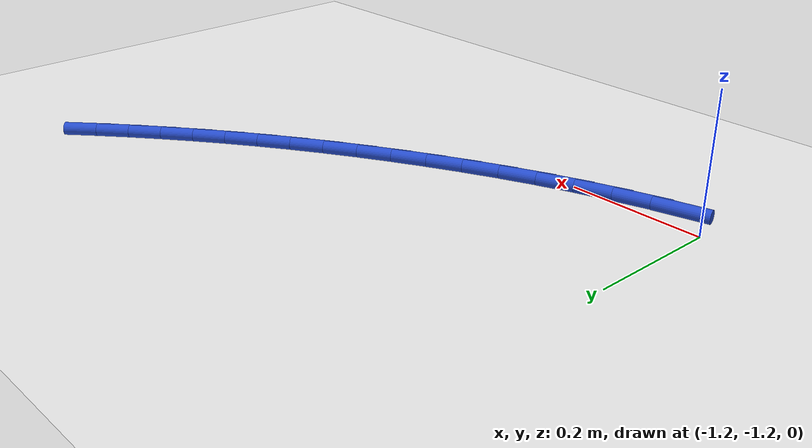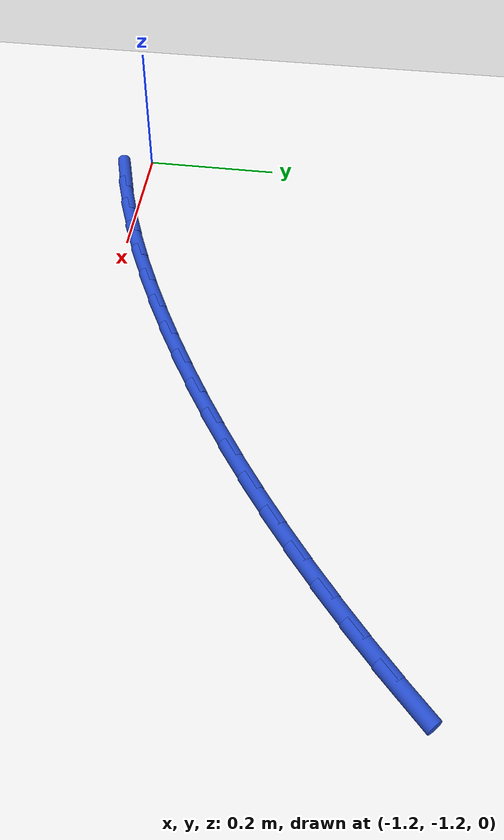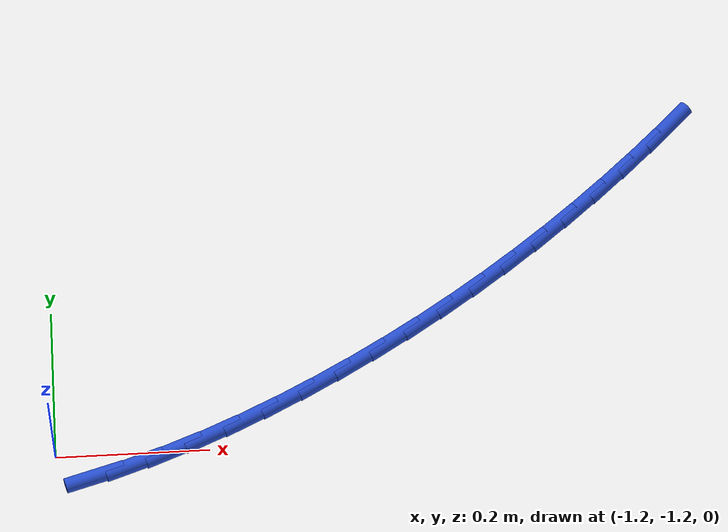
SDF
<sdf version="1.6">
 <world name="default">
  <model name="ground_plane">
   <static>1</static>
   <link name="link">
    <collision name="collision">
     <geometry><plane><normal>0 0 1</normal><size>100 100</size></plane></geometry>
     <surface><friction><ode><mu>100</mu><mu2>50</mu2></ode></friction></surface>
    </collision>
    <visual name="visual">
     <cast_shadows>0</cast_shadows>
     <geometry><plane><normal>0 0 1</normal><size>100 100</size></plane></geometry>
     <material>
      <script><uri>file://media/materials/scripts/gazebo.material</uri><name>Gazebo/WhiteGlow</name></script>
     </material>
    </visual>
   </link>
  </model>
  <model name="line">
   <link name="link_106">
    <pose>-1.150155840245478 -1.2330439395159087 0.01 0 1.57 0.27221920584442283</pose>
    <collision name="collision">
     <geometry><cylinder><radius>0.01</radius><length>0.08</length></cylinder></geometry>
    </collision>
    <visual name="visual">
     <material>
      <script><name>Gazebo/Blue</name><uri>file://media/materials/scripts/gazebo.material</uri></script>
     </material>
     <geometry><cylinder><radius>0.01</radius><length>0.08</length></cylinder></geometry>
    </visual>
   </link>
   <link name="link_107">
    <pose>-1.0981823353707219 -1.2185355983016455 0.01 0 1.57 0.3181240539072013</pose>
    <collision name="collision">
     <geometry><cylinder><radius>0.01</radius><length>0.08</length></cylinder></geometry>
    </collision>
    <visual name="visual">
     <material>
      <script><name>Gazebo/Blue</name><uri>file://media/materials/scripts/gazebo.material</uri></script>
     </material>
     <geometry><cylinder><radius>0.01</radius><length>0.08</length></cylinder></geometry>
    </visual>
   </link>
   <link name="link_108">
    <pose>-1.0465501297801632 -1.2015326619535904 0.01 0 1.57 0.3595386483440262</pose>
    <collision name="collision">
     <geometry><cylinder><radius>0.01</radius><length>0.08</length></cylinder></geometry>
    </collision>
    <visual name="visual">
     <material>
      <script><name>Gazebo/Blue</name><uri>file://media/materials/scripts/gazebo.material</uri></script>
     </material>
     <geometry><cylinder><radius>0.01</radius><length>0.08</length></cylinder></geometry>
    </visual>
   </link>
   <link name="link_109">
    <pose>-0.9954065221168584 -1.1823089956439268 0.01 0 1.57 0.39690900109540606</pose>
    <collision name="collision">
     <geometry><cylinder><radius>0.01</radius><length>0.08</length></cylinder></geometry>
    </collision>
    <visual name="visual">
     <material>
      <script><name>Gazebo/Blue</name><uri>file://media/materials/scripts/gazebo.material</uri></script>
     </material>
     <geometry><cylinder><radius>0.01</radius><length>0.08</length></cylinder></geometry>
    </visual>
   </link>
   <link name="link_110">
    <pose>-0.9448988110238679 -1.1611384645448408 0.01 0 1.57 0.43064487833348736</pose>
    <collision name="collision">
     <geometry><cylinder><radius>0.01</radius><length>0.08</length></cylinder></geometry>
    </collision>
    <visual name="visual">
     <material>
      <script><name>Gazebo/Blue</name><uri>file://media/materials/scripts/gazebo.material</uri></script>
     </material>
     <geometry><cylinder><radius>0.01</radius><length>0.08</length></cylinder></geometry>
    </visual>
   </link>
   <link name="link_111">
    <pose>-0.8951742951442484 -1.1382949338285155 0.01 0 1.57 0.4611138386415986</pose>
    <collision name="collision">
     <geometry><cylinder><radius>0.01</radius><length>0.08</length></cylinder></geometry>
    </collision>
    <visual name="visual">
     <material>
      <script><name>Gazebo/Blue</name><uri>file://media/materials/scripts/gazebo.material</uri></script>
     </material>
     <geometry><cylinder><radius>0.01</radius><length>0.08</length></cylinder></geometry>
    </visual>
   </link>
   <link name="link_112">
    <pose>-0.846380273121058 -1.1140522686671361 0.01 0 1.57 0.4886542088981306</pose>
    <collision name="collision">
     <geometry><cylinder><radius>0.01</radius><length>0.08</length></cylinder></geometry>
    </collision>
    <visual name="visual">
     <material>
      <script><name>Gazebo/Blue</name><uri>file://media/materials/scripts/gazebo.material</uri></script>
     </material>
     <geometry><cylinder><radius>0.01</radius><length>0.08</length></cylinder></geometry>
    </visual>
   </link>
   <link name="link_113">
    <pose>-0.7986629921242566 -1.0886828650298113 0.01 0 1.57 0.514533014624018</pose>
    <collision name="collision">
     <geometry><cylinder><radius>0.01</radius><length>0.08</length></cylinder></geometry>
    </collision>
    <visual name="visual">
     <material>
      <script><name>Gazebo/Blue</name><uri>file://media/materials/scripts/gazebo.material</uri></script>
     </material>
     <geometry><cylinder><radius>0.01</radius><length>0.08</length></cylinder></geometry>
    </visual>
   </link>
   <link name="link_114">
    <pose>-0.7520957997639935 -1.0623572577370237 0.01 0 1.57 0.5404182365920964</pose>
    <collision name="collision">
     <geometry><cylinder><radius>0.01</radius><length>0.08</length></cylinder></geometry>
    </collision>
    <visual name="visual">
     <material>
      <script><name>Gazebo/Blue</name><uri>file://media/materials/scripts/gazebo.material</uri></script>
     </material>
     <geometry><cylinder><radius>0.01</radius><length>0.08</length></cylinder></geometry>
    </visual>
   </link>
   <link name="link_115">
    <pose>-0.7066330147978541 -1.0350796648897478 0.01 0 1.57 0.5663539044159535</pose>
    <collision name="collision">
     <geometry><cylinder><radius>0.01</radius><length>0.08</length></cylinder></geometry>
    </collision>
    <visual name="visual">
     <material>
      <script><name>Gazebo/Blue</name><uri>file://media/materials/scripts/gazebo.material</uri></script>
     </material>
     <geometry><cylinder><radius>0.01</radius><length>0.08</length></cylinder></geometry>
    </visual>
   </link>
   <link name="link_116">
    <pose>-0.662217977646493 -1.0068389647705462 0.01 0 1.57 0.5922255900692978</pose>
    <collision name="collision">
     <geometry><cylinder><radius>0.01</radius><length>0.08</length></cylinder></geometry>
    </collision>
    <visual name="visual">
     <material>
      <script><name>Gazebo/Blue</name><uri>file://media/materials/scripts/gazebo.material</uri></script>
     </material>
     <geometry><cylinder><radius>0.01</radius><length>0.08</length></cylinder></geometry>
    </visual>
   </link>
   <link name="link_117">
    <pose>-0.6187940287305645 -0.9776240356619805 0.01 0 1.57 0.617917694477539</pose>
    <collision name="collision">
     <geometry><cylinder><radius>0.01</radius><length>0.08</length></cylinder></geometry>
    </collision>
    <visual name="visual">
     <material>
      <script><name>Gazebo/Blue</name><uri>file://media/materials/scripts/gazebo.material</uri></script>
     </material>
     <geometry><cylinder><radius>0.01</radius><length>0.08</length></cylinder></geometry>
    </visual>
   </link>
   <link name="link_118">
    <pose>-0.5763045084707241 -0.9474237558466134 0.01 0 1.57 0.6433155792655354</pose>
    <collision name="collision">
     <geometry><cylinder><radius>0.01</radius><length>0.08</length></cylinder></geometry>
    </collision>
    <visual name="visual">
     <material>
      <script><name>Gazebo/Blue</name><uri>file://media/materials/scripts/gazebo.material</uri></script>
     </material>
     <geometry><cylinder><radius>0.01</radius><length>0.08</length></cylinder></geometry>
    </visual>
   </link>
   <link name="link_119">
    <pose>-0.5346927572876262 -0.9162270036070069 0.01 0 1.57 0.6683076655430956</pose>
    <collision name="collision">
     <geometry><cylinder><radius>0.01</radius><length>0.08</length></cylinder></geometry>
    </collision>
    <visual name="visual">
     <material>
      <script><name>Gazebo/Blue</name><uri>file://media/materials/scripts/gazebo.material</uri></script>
     </material>
     <geometry><cylinder><radius>0.01</radius><length>0.08</length></cylinder></geometry>
    </visual>
   </link>
   <link name="link_120">
    <pose>-0.4939021156019251 -0.8840226572257228 0.01 0 1.57 0.6927874071005629</pose>
    <collision name="collision">
     <geometry><cylinder><radius>0.01</radius><length>0.08</length></cylinder></geometry>
    </collision>
    <visual name="visual">
     <material>
      <script><name>Gazebo/Blue</name><uri>file://media/materials/scripts/gazebo.material</uri></script>
     </material>
     <geometry><cylinder><radius>0.01</radius><length>0.08</length></cylinder></geometry>
    </visual>
   </link>
   <link name="link_121">
    <pose>-0.45387592383427533 -0.8507995949853233 0.01 0 1.57 0.7166550555797917</pose>
    <collision name="collision">
     <geometry><cylinder><radius>0.01</radius><length>0.08</length></cylinder></geometry>
    </collision>
    <visual name="visual">
     <material>
      <script><name>Gazebo/Blue</name><uri>file://media/materials/scripts/gazebo.material</uri></script>
     </material>
     <geometry><cylinder><radius>0.01</radius><length>0.08</length></cylinder></geometry>
    </visual>
   </link>
   <link name="link_122">
    <pose>-0.414557522405331 -0.8165466951683703 0.01 0 1.57 0.7398191549178963</pose>
    <collision name="collision">
     <geometry><cylinder><radius>0.01</radius><length>0.08</length></cylinder></geometry>
    </collision>
    <visual name="visual">
     <material>
      <script><name>Gazebo/Blue</name><uri>file://media/materials/scripts/gazebo.material</uri></script>
     </material>
     <geometry><cylinder><radius>0.01</radius><length>0.08</length></cylinder></geometry>
    </visual>
   </link>
   <link name="link_123">
    <pose>-0.3758902519635021 -0.7812528360290926 0.01 0 1.57 0.763038107034951</pose>
    <collision name="collision">
     <geometry><cylinder><radius>0.01</radius><length>0.08</length></cylinder></geometry>
    </collision>
    <visual name="visual">
     <material>
      <script><name>Gazebo/Blue</name><uri>file://media/materials/scripts/gazebo.material</uri></script>
     </material>
     <geometry><cylinder><radius>0.01</radius><length>0.08</length></cylinder></geometry>
    </visual>
   </link>
  </model>
 </world>
</sdf>
